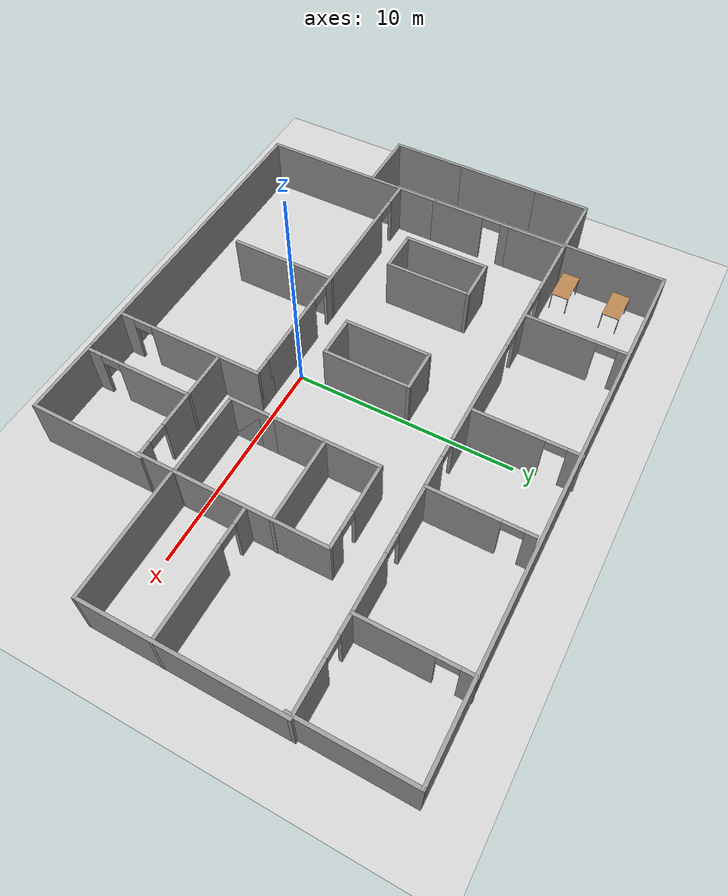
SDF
<sdf version="1.7">
 <world name="default">
  <model name="ground_plane">
   <static>1</static>
   <link name="link">
    <collision name="collision">
     <geometry><plane><normal>0 0 1</normal><size>100 100</size></plane></geometry>
     <surface><friction><ode><mu>100</mu><mu2>50</mu2></ode></friction></surface>
    </collision>
    <visual name="visual">
     <cast_shadows>0</cast_shadows>
     <geometry><plane><normal>0 0 1</normal><size>100 100</size></plane></geometry>
     <material>
      <script><uri>file://media/materials/scripts/gazebo.material</uri><name>Gazebo/Grey</name></script>
     </material>
    </visual>
   </link>
  </model>
  <model name="voenkomat">
   <pose>0.05123 2.49977 0 0 -0 0</pose>
   <link name="Wall_100">
    <collision name="Wall_100_Collision">
     <geometry><box><size>1 0.15 2.5</size></box></geometry>
     <pose>0 0 1.25 0 -0 0</pose>
    </collision>
    <visual name="Wall_100_Visual">
     <pose>0 0 1.25 0 -0 0</pose>
     <geometry><box><size>1 0.15 2.5</size></box></geometry>
     <material>
      <script><uri>file://media/materials/scripts/gazebo.material</uri><name>Gazebo/Grey</name></script>
      <ambient>1 1 1 1</ambient>
     </material>
     <meta><layer>0</layer></meta>
    </visual>
    <pose>1.77334 -3.06579 0 0 -0 0</pose>
   </link>
   <link name="Wall_103">
    <collision name="Wall_103_Collision">
     <geometry><box><size>2 0.15 2.5</size></box></geometry>
     <pose>0 0 1.25 0 -0 0</pose>
    </collision>
    <visual name="Wall_103_Visual">
     <pose>0 0 1.25 0 -0 0</pose>
     <geometry><box><size>2 0.15 2.5</size></box></geometry>
     <material>
      <script><uri>file://media/materials/scripts/gazebo.material</uri><name>Gazebo/Grey</name></script>
      <ambient>1 1 1 1</ambient>
     </material>
     <meta><layer>0</layer></meta>
    </visual>
    <pose>2.19834 -3.99079 0 0 -0 -1.5708</pose>
   </link>
   <link name="Wall_104">
    <pose>4.87334 -4.91579 0 0 -0 0</pose>
    <visual name="Wall_104_Visual_0">
     <pose>-0.778163 0 1.25 0 -0 0</pose>
     <geometry><box><size>3.94367 0.15 2.5</size></box></geometry>
     <material>
      <script><uri>file://media/materials/scripts/gazebo.material</uri><name>Gazebo/Grey</name></script>
      <ambient>1 1 1 1</ambient>
     </material>
     <meta><layer>0</layer></meta>
    </visual>
    <collision name="Wall_104_Collision_0">
     <geometry><box><size>3.94367 0.15 2.5</size></box></geometry>
     <pose>-0.778163 0 1.25 0 -0 0</pose>
    </collision>
    <visual name="Wall_104_Visual_1">
     <pose>2.42184 0 1.25 0 -0 0</pose>
     <geometry><box><size>0.656325 0.15 2.5</size></box></geometry>
     <material>
      <script><uri>file://media/materials/scripts/gazebo.material</uri><name>Gazebo/Grey</name></script>
      <ambient>1 1 1 1</ambient>
     </material>
     <meta><layer>0</layer></meta>
    </visual>
    <collision name="Wall_104_Collision_1">
     <geometry><box><size>0.656325 0.15 2.5</size></box></geometry>
     <pose>2.42184 0 1.25 0 -0 0</pose>
    </collision>
    <visual name="Wall_104_Visual_2">
     <pose>1.64367 0 2.25 0 -0 0</pose>
     <geometry><box><size>0.9 0.15 0.5</size></box></geometry>
     <material>
      <script><uri>file://media/materials/scripts/gazebo.material</uri><name>Gazebo/Grey</name></script>
      <ambient>1 1 1 1</ambient>
     </material>
     <meta><layer>0</layer></meta>
    </visual>
    <collision name="Wall_104_Collision_2">
     <geometry><box><size>0.9 0.15 0.5</size></box></geometry>
     <pose>1.64367 0 2.25 0 -0 0</pose>
    </collision>
   </link>
   <link name="Wall_106">
    <collision name="Wall_106_Collision">
     <geometry><box><size>8.5 0.15 2.5</size></box></geometry>
     <pose>0 0 1.25 0 -0 0</pose>
    </collision>
    <visual name="Wall_106_Visual">
     <pose>0 0 1.25 0 -0 0</pose>
     <geometry><box><size>8.5 0.15 2.5</size></box></geometry>
     <material>
      <script><uri>file://media/materials/scripts/gazebo.material</uri><name>Gazebo/Grey</name></script>
      <ambient>1 1 1 1</ambient>
     </material>
     <meta><layer>0</layer></meta>
    </visual>
    <pose>7.59834 -0.790787 0 0 -0 -1.5708</pose>
   </link>
   <link name="Wall_116">
    <collision name="Wall_116_Collision">
     <geometry><box><size>3.75 0.15 2.5</size></box></geometry>
     <pose>0 0 1.25 0 -0 0</pose>
    </collision>
    <visual name="Wall_116_Visual">
     <pose>0 0 1.25 0 -0 0</pose>
     <geometry><box><size>3.75 0.15 2.5</size></box></geometry>
     <material>
      <script><uri>file://media/materials/scripts/gazebo.material</uri><name>Gazebo/Grey</name></script>
      <ambient>1 1 1 1</ambient>
     </material>
     <meta><layer>0</layer></meta>
    </visual>
    <pose>5.89834 -9.91579 0 0 -0 0</pose>
   </link>
   <link name="Wall_117">
    <collision name="Wall_117_Collision">
     <geometry><box><size>5.25 0.15 2.5</size></box></geometry>
     <pose>0 0 1.25 0 -0 0</pose>
    </collision>
    <visual name="Wall_117_Visual">
     <pose>0 0 1.25 0 -0 0</pose>
     <geometry><box><size>5.25 0.15 2.5</size></box></geometry>
     <material>
      <script><uri>file://media/materials/scripts/gazebo.material</uri><name>Gazebo/Grey</name></script>
      <ambient>1 1 1 1</ambient>
     </material>
     <meta><layer>0</layer></meta>
    </visual>
    <pose>7.69834 -7.36579 0 0 -0 1.5708</pose>
   </link>
   <link name="Wall_119">
    <collision name="Wall_119_Collision">
     <geometry><box><size>5 0.15 2.5</size></box></geometry>
     <pose>0 0 1.25 0 -0 0</pose>
    </collision>
    <visual name="Wall_119_Visual">
     <pose>0 0 1.25 0 -0 0</pose>
     <geometry><box><size>5 0.15 2.5</size></box></geometry>
     <material>
      <script><uri>file://media/materials/scripts/gazebo.material</uri><name>Gazebo/Grey</name></script>
      <ambient>1 1 1 1</ambient>
     </material>
     <meta><layer>0</layer></meta>
    </visual>
    <pose>-3.78453 -5.48183 0 0 -0 -1.5708</pose>
   </link>
   <link name="Wall_121">
    <pose>2.19834 -7.34079 0 0 -0 -1.5708</pose>
    <visual name="Wall_121_Visual_0">
     <pose>-0.772605 0 1.25 0 -0 0</pose>
     <geometry><box><size>3.45479 0.15 2.5</size></box></geometry>
     <material>
      <script><uri>file://media/materials/scripts/gazebo.material</uri><name>Gazebo/Grey</name></script>
      <ambient>1 1 1 1</ambient>
     </material>
     <meta><layer>0</layer></meta>
    </visual>
    <collision name="Wall_121_Collision_0">
     <geometry><box><size>3.45479 0.15 2.5</size></box></geometry>
     <pose>-0.772605 0 1.25 0 -0 0</pose>
    </collision>
    <visual name="Wall_121_Visual_1">
     <pose>2.1774 0 1.25 0 -0 0</pose>
     <geometry><box><size>0.645211 0.15 2.5</size></box></geometry>
     <material>
      <script><uri>file://media/materials/scripts/gazebo.material</uri><name>Gazebo/Grey</name></script>
      <ambient>1 1 1 1</ambient>
     </material>
     <meta><layer>0</layer></meta>
    </visual>
    <collision name="Wall_121_Collision_1">
     <geometry><box><size>0.645211 0.15 2.5</size></box></geometry>
     <pose>2.1774 0 1.25 0 -0 0</pose>
    </collision>
    <visual name="Wall_121_Visual_2">
     <pose>1.40479 0 2.25 0 -0 0</pose>
     <geometry><box><size>0.9 0.15 0.5</size></box></geometry>
     <material>
      <script><uri>file://media/materials/scripts/gazebo.material</uri><name>Gazebo/Grey</name></script>
      <ambient>1 1 1 1</ambient>
     </material>
     <meta><layer>0</layer></meta>
    </visual>
    <collision name="Wall_121_Collision_2">
     <geometry><box><size>0.9 0.15 0.5</size></box></geometry>
     <pose>1.40479 0 2.25 0 -0 0</pose>
    </collision>
   </link>
   <link name="Wall_126">
    <collision name="Wall_126_Collision">
     <geometry><box><size>8.75 0.15 2.5</size></box></geometry>
     <pose>0 0 1.25 0 -0 0</pose>
    </collision>
    <visual name="Wall_126_Visual">
     <pose>0 0 1.25 0 -0 0</pose>
     <geometry><box><size>8.75 0.15 2.5</size></box></geometry>
     <material>
      <script><uri>file://media/materials/scripts/gazebo.material</uri><name>Gazebo/Grey</name></script>
      <ambient>1 1 1 1</ambient>
     </material>
     <meta><layer>0</layer></meta>
    </visual>
    <pose>13.3483 0.934213 0 0 -0 -1.5708</pose>
   </link>
   <link name="Wall_127">
    <collision name="Wall_127_Collision">
     <geometry><box><size>5.75 0.15 2.5</size></box></geometry>
     <pose>0 0 1.25 0 -0 0</pose>
    </collision>
    <visual name="Wall_127_Visual">
     <pose>0 0 1.25 0 -0 0</pose>
     <geometry><box><size>5.75 0.15 2.5</size></box></geometry>
     <material>
      <script><uri>file://media/materials/scripts/gazebo.material</uri><name>Gazebo/Grey</name></script>
      <ambient>1 1 1 1</ambient>
     </material>
     <meta><layer>0</layer></meta>
    </visual>
    <pose>10.5483 -3.36579 0 0 -0 3.14159</pose>
   </link>
   <link name="Wall_129">
    <pose>10.5517 -0.118334 0 0 -0 3.14159</pose>
    <visual name="Wall_129_Visual_0">
     <pose>-0.809428 0 1.25 0 -0 0</pose>
     <geometry><box><size>4.13114 0.15 2.5</size></box></geometry>
     <material>
      <script><uri>file://media/materials/scripts/gazebo.material</uri><name>Gazebo/Grey</name></script>
      <ambient>1 1 1 1</ambient>
     </material>
     <meta><layer>0</layer></meta>
    </visual>
    <collision name="Wall_129_Collision_0">
     <geometry><box><size>4.13114 0.15 2.5</size></box></geometry>
     <pose>-0.809428 0 1.25 0 -0 0</pose>
    </collision>
    <visual name="Wall_129_Visual_1">
     <pose>2.51557 0 1.25 0 -0 0</pose>
     <geometry><box><size>0.718856 0.15 2.5</size></box></geometry>
     <material>
      <script><uri>file://media/materials/scripts/gazebo.material</uri><name>Gazebo/Grey</name></script>
      <ambient>1 1 1 1</ambient>
     </material>
     <meta><layer>0</layer></meta>
    </visual>
    <collision name="Wall_129_Collision_1">
     <geometry><box><size>0.718856 0.15 2.5</size></box></geometry>
     <pose>2.51557 0 1.25 0 -0 0</pose>
    </collision>
    <visual name="Wall_129_Visual_2">
     <pose>1.70614 0 2.25 0 -0 0</pose>
     <geometry><box><size>0.9 0.15 0.5</size></box></geometry>
     <material>
      <script><uri>file://media/materials/scripts/gazebo.material</uri><name>Gazebo/Grey</name></script>
      <ambient>1 1 1 1</ambient>
     </material>
     <meta><layer>0</layer></meta>
    </visual>
    <collision name="Wall_129_Collision_2">
     <geometry><box><size>0.9 0.15 0.5</size></box></geometry>
     <pose>1.70614 0 2.25 0 -0 0</pose>
    </collision>
   </link>
   <link name="Wall_131">
    <pose>4.41332 -7.33089 0 0 -0 -1.5708</pose>
    <visual name="Wall_131_Visual_0">
     <pose>-0.76586 0 1.25 0 -0 0</pose>
     <geometry><box><size>3.46828 0.15 2.5</size></box></geometry>
     <material>
      <script><uri>file://media/materials/scripts/gazebo.material</uri><name>Gazebo/Grey</name></script>
      <ambient>1 1 1 1</ambient>
     </material>
     <meta><layer>0</layer></meta>
    </visual>
    <collision name="Wall_131_Collision_0">
     <geometry><box><size>3.46828 0.15 2.5</size></box></geometry>
     <pose>-0.76586 0 1.25 0 -0 0</pose>
    </collision>
    <visual name="Wall_131_Visual_1">
     <pose>2.18414 0 1.25 0 -0 0</pose>
     <geometry><box><size>0.63172 0.15 2.5</size></box></geometry>
     <material>
      <script><uri>file://media/materials/scripts/gazebo.material</uri><name>Gazebo/Grey</name></script>
      <ambient>1 1 1 1</ambient>
     </material>
     <meta><layer>0</layer></meta>
    </visual>
    <collision name="Wall_131_Collision_1">
     <geometry><box><size>0.63172 0.15 2.5</size></box></geometry>
     <pose>2.18414 0 1.25 0 -0 0</pose>
    </collision>
    <visual name="Wall_131_Visual_2">
     <pose>1.41828 0 2.25 0 -0 0</pose>
     <geometry><box><size>0.9 0.15 0.5</size></box></geometry>
     <material>
      <script><uri>file://media/materials/scripts/gazebo.material</uri><name>Gazebo/Grey</name></script>
      <ambient>1 1 1 1</ambient>
     </material>
     <meta><layer>0</layer></meta>
    </visual>
    <collision name="Wall_131_Collision_2">
     <geometry><box><size>0.9 0.15 0.5</size></box></geometry>
     <pose>1.41828 0 2.25 0 -0 0</pose>
    </collision>
   </link>
   <link name="Wall_133">
    <collision name="Wall_133_Collision">
     <geometry><box><size>4 0.15 2.5</size></box></geometry>
     <pose>0 0 1.25 0 -0 0</pose>
    </collision>
    <visual name="Wall_133_Visual">
     <pose>0 0 1.25 0 -0 0</pose>
     <geometry><box><size>4 0.15 2.5</size></box></geometry>
     <material>
      <script><uri>file://media/materials/scripts/gazebo.material</uri><name>Gazebo/Grey</name></script>
      <ambient>1 1 1 1</ambient>
     </material>
     <meta><layer>0</layer></meta>
    </visual>
    <pose>5.69103 1.00063 0 0 -0 0</pose>
   </link>
   <link name="Wall_152">
    <pose>3.71917 7.45539 0 0 -0 1.5708</pose>
    <visual name="Wall_152_Visual_0">
     <pose>-0.692996 0 1.25 0 -0 0</pose>
     <geometry><box><size>3.11401 0.15 2.5</size></box></geometry>
     <material>
      <script><uri>file://media/materials/scripts/gazebo.material</uri><name>Gazebo/Grey</name></script>
      <ambient>1 1 1 1</ambient>
     </material>
     <meta><layer>0</layer></meta>
    </visual>
    <collision name="Wall_152_Collision_0">
     <geometry><box><size>3.11401 0.15 2.5</size></box></geometry>
     <pose>-0.692996 0 1.25 0 -0 0</pose>
    </collision>
    <visual name="Wall_152_Visual_1">
     <pose>2.007 0 1.25 0 -0 0</pose>
     <geometry><box><size>0.485991 0.15 2.5</size></box></geometry>
     <material>
      <script><uri>file://media/materials/scripts/gazebo.material</uri><name>Gazebo/Grey</name></script>
      <ambient>1 1 1 1</ambient>
     </material>
     <meta><layer>0</layer></meta>
    </visual>
    <collision name="Wall_152_Collision_1">
     <geometry><box><size>0.485991 0.15 2.5</size></box></geometry>
     <pose>2.007 0 1.25 0 -0 0</pose>
    </collision>
    <visual name="Wall_152_Visual_2">
     <pose>1.31401 0 2.25 0 -0 0</pose>
     <geometry><box><size>0.9 0.15 0.5</size></box></geometry>
     <material>
      <script><uri>file://media/materials/scripts/gazebo.material</uri><name>Gazebo/Grey</name></script>
      <ambient>1 1 1 1</ambient>
     </material>
     <meta><layer>0</layer></meta>
    </visual>
    <collision name="Wall_152_Collision_2">
     <geometry><box><size>0.9 0.15 0.5</size></box></geometry>
     <pose>1.31401 0 2.25 0 -0 0</pose>
    </collision>
   </link>
   <link name="Wall_156">
    <pose>9.33374 7.58039 0 0 -0 1.5708</pose>
    <visual name="Wall_156_Visual_0">
     <pose>-0.77731 0 1.25 0 -0 0</pose>
     <geometry><box><size>3.19538 0.15 2.5</size></box></geometry>
     <material>
      <script><uri>file://media/materials/scripts/gazebo.material</uri><name>Gazebo/Grey</name></script>
      <ambient>1 1 1 1</ambient>
     </material>
     <meta><layer>0</layer></meta>
    </visual>
    <collision name="Wall_156_Collision_0">
     <geometry><box><size>3.19538 0.15 2.5</size></box></geometry>
     <pose>-0.77731 0 1.25 0 -0 0</pose>
    </collision>
    <visual name="Wall_156_Visual_1">
     <pose>2.04769 0 1.25 0 -0 0</pose>
     <geometry><box><size>0.654621 0.15 2.5</size></box></geometry>
     <material>
      <script><uri>file://media/materials/scripts/gazebo.material</uri><name>Gazebo/Grey</name></script>
      <ambient>1 1 1 1</ambient>
     </material>
     <meta><layer>0</layer></meta>
    </visual>
    <collision name="Wall_156_Collision_1">
     <geometry><box><size>0.654621 0.15 2.5</size></box></geometry>
     <pose>2.04769 0 1.25 0 -0 0</pose>
    </collision>
    <visual name="Wall_156_Visual_2">
     <pose>1.27038 0 2.25 0 -0 0</pose>
     <geometry><box><size>0.9 0.15 0.5</size></box></geometry>
     <material>
      <script><uri>file://media/materials/scripts/gazebo.material</uri><name>Gazebo/Grey</name></script>
      <ambient>1 1 1 1</ambient>
     </material>
     <meta><layer>0</layer></meta>
    </visual>
    <collision name="Wall_156_Collision_2">
     <geometry><box><size>0.9 0.15 0.5</size></box></geometry>
     <pose>1.27038 0 2.25 0 -0 0</pose>
    </collision>
   </link>
   <link name="Wall_159">
    <collision name="Wall_159_Collision">
     <geometry><box><size>3.5 0.15 2.5</size></box></geometry>
     <pose>0 0 1.25 0 -0 0</pose>
    </collision>
    <visual name="Wall_159_Visual">
     <pose>0 0 1.25 0 -0 0</pose>
     <geometry><box><size>3.5 0.15 2.5</size></box></geometry>
     <material>
      <script><uri>file://media/materials/scripts/gazebo.material</uri><name>Gazebo/Grey</name></script>
      <ambient>1 1 1 1</ambient>
     </material>
     <meta><layer>0</layer></meta>
    </visual>
    <pose>-13.3517 -2.89079 0 0 -0 -1.5708</pose>
   </link>
   <link name="Wall_162">
    <collision name="Wall_162_Collision">
     <geometry><box><size>3 0.15 2.5</size></box></geometry>
     <pose>0 0 1.25 0 -0 0</pose>
    </collision>
    <visual name="Wall_162_Visual">
     <pose>0 0 1.25 0 -0 0</pose>
     <geometry><box><size>3 0.15 2.5</size></box></geometry>
     <material>
      <script><uri>file://media/materials/scripts/gazebo.material</uri><name>Gazebo/Grey</name></script>
      <ambient>1 1 1 1</ambient>
     </material>
     <meta><layer>0</layer></meta>
    </visual>
    <pose>-11.9267 -4.56579 0 0 -0 0</pose>
   </link>
   <link name="Wall_165">
    <collision name="Wall_165_Collision">
     <geometry><box><size>24 0.15 2.5</size></box></geometry>
     <pose>0 0 1.25 0 -0 0</pose>
    </collision>
    <visual name="Wall_165_Visual">
     <pose>0 0 1.25 0 -0 0</pose>
     <geometry><box><size>24 0.15 2.5</size></box></geometry>
     <material>
      <script><uri>file://media/materials/scripts/gazebo.material</uri><name>Gazebo/Grey</name></script>
      <ambient>1 1 1 1</ambient>
     </material>
     <meta><layer>0</layer></meta>
    </visual>
    <pose>1.31046 9.85172 0 0 -0 0</pose>
   </link>
   <link name="Wall_169">
    <collision name="Wall_169_Collision">
     <geometry><box><size>4.75 0.15 2.5</size></box></geometry>
     <pose>0 0 1.25 0 -0 0</pose>
    </collision>
    <visual name="Wall_169_Visual">
     <pose>0 0 1.25 0 -0 0</pose>
     <geometry><box><size>4.75 0.15 2.5</size></box></geometry>
     <material>
      <script><uri>file://media/materials/scripts/gazebo.material</uri><name>Gazebo/Grey</name></script>
      <ambient>1 1 1 1</ambient>
     </material>
     <meta><layer>0</layer></meta>
    </visual>
    <pose>-10.6145 7.55172 0 0 -0 -1.5708</pose>
   </link>
   <link name="Wall_171">
    <collision name="Wall_171_Collision">
     <geometry><box><size>5 0.15 2.5</size></box></geometry>
     <pose>0 0 1.25 0 -0 0</pose>
    </collision>
    <visual name="Wall_171_Visual">
     <pose>0 0 1.25 0 -0 0</pose>
     <geometry><box><size>5 0.15 2.5</size></box></geometry>
     <material>
      <script><uri>file://media/materials/scripts/gazebo.material</uri><name>Gazebo/Grey</name></script>
      <ambient>1 1 1 1</ambient>
     </material>
     <meta><layer>0</layer></meta>
    </visual>
    <pose>13.2355 7.42672 0 0 -0 -1.5708</pose>
   </link>
   <link name="Wall_176">
    <pose>-5.85231 7.55196 0 0 -0 -1.5708</pose>
    <visual name="Wall_176_Visual_0">
     <pose>-2.10259 0 1.25 0 -0 0</pose>
     <geometry><box><size>0.544819 0.15 2.5</size></box></geometry>
     <material>
      <script><uri>file://media/materials/scripts/gazebo.material</uri><name>Gazebo/Grey</name></script>
      <ambient>1 1 1 1</ambient>
     </material>
     <meta><layer>0</layer></meta>
    </visual>
    <collision name="Wall_176_Collision_0">
     <geometry><box><size>0.544819 0.15 2.5</size></box></geometry>
     <pose>-2.10259 0 1.25 0 -0 0</pose>
    </collision>
    <visual name="Wall_176_Visual_1">
     <pose>0.722409 0 1.25 0 -0 0</pose>
     <geometry><box><size>3.30518 0.15 2.5</size></box></geometry>
     <material>
      <script><uri>file://media/materials/scripts/gazebo.material</uri><name>Gazebo/Grey</name></script>
      <ambient>1 1 1 1</ambient>
     </material>
     <meta><layer>0</layer></meta>
    </visual>
    <collision name="Wall_176_Collision_1">
     <geometry><box><size>3.30518 0.15 2.5</size></box></geometry>
     <pose>0.722409 0 1.25 0 -0 0</pose>
    </collision>
    <visual name="Wall_176_Visual_2">
     <pose>-1.38018 0 2.25 0 -0 0</pose>
     <geometry><box><size>0.9 0.15 0.5</size></box></geometry>
     <material>
      <script><uri>file://media/materials/scripts/gazebo.material</uri><name>Gazebo/Grey</name></script>
      <ambient>1 1 1 1</ambient>
     </material>
     <meta><layer>0</layer></meta>
    </visual>
    <collision name="Wall_176_Collision_2">
     <geometry><box><size>0.9 0.15 0.5</size></box></geometry>
     <pose>-1.38018 0 2.25 0 -0 0</pose>
    </collision>
   </link>
   <link name="Wall_181">
    <pose>-0.289859 7.61579 0 0 -0 -1.5708</pose>
    <visual name="Wall_181_Visual_0">
     <pose>-2.02999 0 1.25 0 -0 0</pose>
     <geometry><box><size>0.690014 0.15 2.5</size></box></geometry>
     <material>
      <script><uri>file://media/materials/scripts/gazebo.material</uri><name>Gazebo/Grey</name></script>
      <ambient>1 1 1 1</ambient>
     </material>
     <meta><layer>0</layer></meta>
    </visual>
    <collision name="Wall_181_Collision_0">
     <geometry><box><size>0.690014 0.15 2.5</size></box></geometry>
     <pose>-2.02999 0 1.25 0 -0 0</pose>
    </collision>
    <visual name="Wall_181_Visual_1">
     <pose>0.795007 0 1.25 0 -0 0</pose>
     <geometry><box><size>3.15999 0.15 2.5</size></box></geometry>
     <material>
      <script><uri>file://media/materials/scripts/gazebo.material</uri><name>Gazebo/Grey</name></script>
      <ambient>1 1 1 1</ambient>
     </material>
     <meta><layer>0</layer></meta>
    </visual>
    <collision name="Wall_181_Collision_1">
     <geometry><box><size>3.15999 0.15 2.5</size></box></geometry>
     <pose>0.795007 0 1.25 0 -0 0</pose>
    </collision>
    <visual name="Wall_181_Visual_2">
     <pose>-1.23499 0 2.25 0 -0 0</pose>
     <geometry><box><size>0.9 0.15 0.5</size></box></geometry>
     <material>
      <script><uri>file://media/materials/scripts/gazebo.material</uri><name>Gazebo/Grey</name></script>
      <ambient>1 1 1 1</ambient>
     </material>
     <meta><layer>0</layer></meta>
    </visual>
    <collision name="Wall_181_Collision_2">
     <geometry><box><size>0.9 0.15 0.5</size></box></geometry>
     <pose>-1.23499 0 2.25 0 -0 0</pose>
    </collision>
   </link>
   <link name="Wall_183">
    <collision name="Wall_183_Collision">
     <geometry><box><size>2.75 0.15 2.5</size></box></geometry>
     <pose>0 0 1.25 0 -0 0</pose>
    </collision>
    <visual name="Wall_183_Visual">
     <pose>0 0 1.25 0 -0 0</pose>
     <geometry><box><size>2.75 0.15 2.5</size></box></geometry>
     <material>
      <script><uri>file://media/materials/scripts/gazebo.material</uri><name>Gazebo/Grey</name></script>
      <ambient>1 1 1 1</ambient>
     </material>
     <meta><layer>0</layer></meta>
    </visual>
    <pose>-11.9145 5.25172 0 0 -0 3.14159</pose>
   </link>
   <link name="Wall_185">
    <collision name="Wall_185_Collision">
     <geometry><box><size>2.75 0.15 2.5</size></box></geometry>
     <pose>0 0 1.25 0 -0 0</pose>
    </collision>
    <visual name="Wall_185_Visual">
     <pose>0 0 1.25 0 -0 0</pose>
     <geometry><box><size>2.75 0.15 2.5</size></box></geometry>
     <material>
      <script><uri>file://media/materials/scripts/gazebo.material</uri><name>Gazebo/Grey</name></script>
      <ambient>1 1 1 1</ambient>
     </material>
     <meta><layer>0</layer></meta>
    </visual>
    <pose>-13.3517 3.93421 0 0 -0 1.5708</pose>
   </link>
   <link name="Wall_25">
    <collision name="Wall_25_Collision">
     <geometry><box><size>4 0.15 2.5</size></box></geometry>
     <pose>0 0 1.25 0 -0 0</pose>
    </collision>
    <visual name="Wall_25_Visual">
     <pose>0 0 1.25 0 -0 0</pose>
     <geometry><box><size>4 0.15 2.5</size></box></geometry>
     <material>
      <script><uri>file://media/materials/scripts/gazebo.material</uri><name>Gazebo/Grey</name></script>
      <ambient>1 1 1 1</ambient>
     </material>
     <meta><layer>0</layer></meta>
    </visual>
    <pose>-0.101664 0.709213 0 0 -0 1.5708</pose>
   </link>
   <link name="Wall_26">
    <collision name="Wall_26_Collision">
     <geometry><box><size>2 0.15 2.5</size></box></geometry>
     <pose>0 0 1.25 0 -0 0</pose>
    </collision>
    <visual name="Wall_26_Visual">
     <pose>0 0 1.25 0 -0 0</pose>
     <geometry><box><size>2 0.15 2.5</size></box></geometry>
     <material>
      <script><uri>file://media/materials/scripts/gazebo.material</uri><name>Gazebo/Grey</name></script>
      <ambient>1 1 1 1</ambient>
     </material>
     <meta><layer>0</layer></meta>
    </visual>
    <pose>-1.02666 2.63421 0 0 -0 3.14159</pose>
   </link>
   <link name="Wall_27">
    <collision name="Wall_27_Collision">
     <geometry><box><size>4 0.15 2.5</size></box></geometry>
     <pose>0 0 1.25 0 -0 0</pose>
    </collision>
    <visual name="Wall_27_Visual">
     <pose>0 0 1.25 0 -0 0</pose>
     <geometry><box><size>4 0.15 2.5</size></box></geometry>
     <material>
      <script><uri>file://media/materials/scripts/gazebo.material</uri><name>Gazebo/Grey</name></script>
      <ambient>1 1 1 1</ambient>
     </material>
     <meta><layer>0</layer></meta>
    </visual>
    <pose>-1.95166 0.709213 0 0 -0 -1.5708</pose>
   </link>
   <link name="Wall_28">
    <collision name="Wall_28_Collision">
     <geometry><box><size>2 0.15 2.5</size></box></geometry>
     <pose>0 0 1.25 0 -0 0</pose>
    </collision>
    <visual name="Wall_28_Visual">
     <pose>0 0 1.25 0 -0 0</pose>
     <geometry><box><size>2 0.15 2.5</size></box></geometry>
     <material>
      <script><uri>file://media/materials/scripts/gazebo.material</uri><name>Gazebo/Grey</name></script>
      <ambient>1 1 1 1</ambient>
     </material>
     <meta><layer>0</layer></meta>
    </visual>
    <pose>-1.02666 -1.21579 0 0 -0 0</pose>
   </link>
   <link name="Wall_31">
    <collision name="Wall_31_Collision">
     <geometry><box><size>4 0.15 2.5</size></box></geometry>
     <pose>0 0 1.25 0 -0 0</pose>
    </collision>
    <visual name="Wall_31_Visual">
     <pose>0 0 1.25 0 -0 0</pose>
     <geometry><box><size>4 0.15 2.5</size></box></geometry>
     <material>
      <script><uri>file://media/materials/scripts/gazebo.material</uri><name>Gazebo/Grey</name></script>
      <ambient>1 1 1 1</ambient>
     </material>
     <meta><layer>0</layer></meta>
    </visual>
    <pose>-5.80166 0.709213 0 0 -0 1.5708</pose>
   </link>
   <link name="Wall_36">
    <collision name="Wall_36_Collision">
     <geometry><box><size>2 0.15 2.5</size></box></geometry>
     <pose>0 0 1.25 0 -0 0</pose>
    </collision>
    <visual name="Wall_36_Visual">
     <pose>0 0 1.25 0 -0 0</pose>
     <geometry><box><size>2 0.15 2.5</size></box></geometry>
     <material>
      <script><uri>file://media/materials/scripts/gazebo.material</uri><name>Gazebo/Grey</name></script>
      <ambient>1 1 1 1</ambient>
     </material>
     <meta><layer>0</layer></meta>
    </visual>
    <pose>-6.72666 2.63421 0 0 -0 3.14159</pose>
   </link>
   <link name="Wall_37">
    <collision name="Wall_37_Collision">
     <geometry><box><size>4 0.15 2.5</size></box></geometry>
     <pose>0 0 1.25 0 -0 0</pose>
    </collision>
    <visual name="Wall_37_Visual">
     <pose>0 0 1.25 0 -0 0</pose>
     <geometry><box><size>4 0.15 2.5</size></box></geometry>
     <material>
      <script><uri>file://media/materials/scripts/gazebo.material</uri><name>Gazebo/Grey</name></script>
      <ambient>1 1 1 1</ambient>
     </material>
     <meta><layer>0</layer></meta>
    </visual>
    <pose>-7.65166 0.709213 0 0 -0 -1.5708</pose>
   </link>
   <link name="Wall_38">
    <collision name="Wall_38_Collision">
     <geometry><box><size>2 0.15 2.5</size></box></geometry>
     <pose>0 0 1.25 0 -0 0</pose>
    </collision>
    <visual name="Wall_38_Visual">
     <pose>0 0 1.25 0 -0 0</pose>
     <geometry><box><size>2 0.15 2.5</size></box></geometry>
     <material>
      <script><uri>file://media/materials/scripts/gazebo.material</uri><name>Gazebo/Grey</name></script>
      <ambient>1 1 1 1</ambient>
     </material>
     <meta><layer>0</layer></meta>
    </visual>
    <pose>-6.72666 -1.21579 0 0 -0 0</pose>
   </link>
   <link name="Wall_41">
    <pose>-10.5017 0.709213 0 0 -0 1.5708</pose>
    <visual name="Wall_41_Visual_0">
     <pose>-0.729563 0 1.25 0 -0 0</pose>
     <geometry><box><size>2.54087 0.15 2.5</size></box></geometry>
     <material>
      <script><uri>file://media/materials/scripts/gazebo.material</uri><name>Gazebo/Grey</name></script>
      <ambient>1 1 1 1</ambient>
     </material>
     <meta><layer>0</layer></meta>
    </visual>
    <collision name="Wall_41_Collision_0">
     <geometry><box><size>2.54087 0.15 2.5</size></box></geometry>
     <pose>-0.729563 0 1.25 0 -0 0</pose>
    </collision>
    <visual name="Wall_41_Visual_1">
     <pose>1.72044 0 1.25 0 -0 0</pose>
     <geometry><box><size>0.559126 0.15 2.5</size></box></geometry>
     <material>
      <script><uri>file://media/materials/scripts/gazebo.material</uri><name>Gazebo/Grey</name></script>
      <ambient>1 1 1 1</ambient>
     </material>
     <meta><layer>0</layer></meta>
    </visual>
    <collision name="Wall_41_Collision_1">
     <geometry><box><size>0.559126 0.15 2.5</size></box></geometry>
     <pose>1.72044 0 1.25 0 -0 0</pose>
    </collision>
    <visual name="Wall_41_Visual_2">
     <pose>0.990874 0 2.25 0 -0 0</pose>
     <geometry><box><size>0.9 0.15 0.5</size></box></geometry>
     <material>
      <script><uri>file://media/materials/scripts/gazebo.material</uri><name>Gazebo/Grey</name></script>
      <ambient>1 1 1 1</ambient>
     </material>
     <meta><layer>0</layer></meta>
    </visual>
    <collision name="Wall_41_Collision_2">
     <geometry><box><size>0.9 0.15 0.5</size></box></geometry>
     <pose>0.990874 0 2.25 0 -0 0</pose>
    </collision>
   </link>
   <link name="Wall_49">
    <collision name="Wall_49_Collision">
     <geometry><box><size>4 0.15 2.5</size></box></geometry>
     <pose>0 0 1.25 0 -0 0</pose>
    </collision>
    <visual name="Wall_49_Visual">
     <pose>0 0 1.25 0 -0 0</pose>
     <geometry><box><size>4 0.15 2.5</size></box></geometry>
     <material>
      <script><uri>file://media/materials/scripts/gazebo.material</uri><name>Gazebo/Grey</name></script>
      <ambient>1 1 1 1</ambient>
     </material>
     <meta><layer>0</layer></meta>
    </visual>
    <pose>-13.3517 0.709213 0 0 -0 -1.5708</pose>
   </link>
   <link name="Wall_52">
    <collision name="Wall_52_Collision">
     <geometry><box><size>2 0.15 2.5</size></box></geometry>
     <pose>0 0 1.25 0 -0 0</pose>
    </collision>
    <visual name="Wall_52_Visual">
     <pose>0 0 1.25 0 -0 0</pose>
     <geometry><box><size>2 0.15 2.5</size></box></geometry>
     <material>
      <script><uri>file://media/materials/scripts/gazebo.material</uri><name>Gazebo/Grey</name></script>
      <ambient>1 1 1 1</ambient>
     </material>
     <meta><layer>0</layer></meta>
    </visual>
    <pose>-10.5017 -2.14079 0 0 -0 -1.5708</pose>
   </link>
   <link name="Wall_53">
    <pose>-4.57666 -3.06579 0 0 -0 0</pose>
    <visual name="Wall_53_Visual_0">
     <pose>-5.42324 0 1.25 0 -0 0</pose>
     <geometry><box><size>1.15352 0.15 2.5</size></box></geometry>
     <material>
      <script><uri>file://media/materials/scripts/gazebo.material</uri><name>Gazebo/Grey</name></script>
      <ambient>1 1 1 1</ambient>
     </material>
     <meta><layer>0</layer></meta>
    </visual>
    <collision name="Wall_53_Collision_0">
     <geometry><box><size>1.15352 0.15 2.5</size></box></geometry>
     <pose>-5.42324 0 1.25 0 -0 0</pose>
    </collision>
    <visual name="Wall_53_Visual_1">
     <pose>-1.3038 0 1.25 0 -0 0</pose>
     <geometry><box><size>5.28537 0.15 2.5</size></box></geometry>
     <material>
      <script><uri>file://media/materials/scripts/gazebo.material</uri><name>Gazebo/Grey</name></script>
      <ambient>1 1 1 1</ambient>
     </material>
     <meta><layer>0</layer></meta>
    </visual>
    <collision name="Wall_53_Collision_1">
     <geometry><box><size>5.28537 0.15 2.5</size></box></geometry>
     <pose>-1.3038 0 1.25 0 -0 0</pose>
    </collision>
    <visual name="Wall_53_Visual_2">
     <pose>4.11945 0 1.25 0 -0 0</pose>
     <geometry><box><size>3.76111 0.15 2.5</size></box></geometry>
     <material>
      <script><uri>file://media/materials/scripts/gazebo.material</uri><name>Gazebo/Grey</name></script>
      <ambient>1 1 1 1</ambient>
     </material>
     <meta><layer>0</layer></meta>
    </visual>
    <collision name="Wall_53_Collision_2">
     <geometry><box><size>3.76111 0.15 2.5</size></box></geometry>
     <pose>4.11945 0 1.25 0 -0 0</pose>
    </collision>
    <visual name="Wall_53_Visual_3">
     <pose>-4.39648 0 2.25 0 -0 0</pose>
     <geometry><box><size>0.9 0.15 0.5</size></box></geometry>
     <material>
      <script><uri>file://media/materials/scripts/gazebo.material</uri><name>Gazebo/Grey</name></script>
      <ambient>1 1 1 1</ambient>
     </material>
     <meta><layer>0</layer></meta>
    </visual>
    <collision name="Wall_53_Collision_3">
     <geometry><box><size>0.9 0.15 0.5</size></box></geometry>
     <pose>-4.39648 0 2.25 0 -0 0</pose>
    </collision>
    <visual name="Wall_53_Visual_4">
     <pose>1.78889 0 2.25 0 -0 0</pose>
     <geometry><box><size>0.9 0.15 0.5</size></box></geometry>
     <material>
      <script><uri>file://media/materials/scripts/gazebo.material</uri><name>Gazebo/Grey</name></script>
      <ambient>1 1 1 1</ambient>
     </material>
     <meta><layer>0</layer></meta>
    </visual>
    <collision name="Wall_53_Collision_4">
     <geometry><box><size>0.9 0.15 0.5</size></box></geometry>
     <pose>1.78889 0 2.25 0 -0 0</pose>
    </collision>
   </link>
   <link name="Wall_56">
    <collision name="Wall_56_Collision">
     <geometry><box><size>4.75 0.15 2.5</size></box></geometry>
     <pose>0 0 1.25 0 -0 0</pose>
    </collision>
    <visual name="Wall_56_Visual">
     <pose>0 0 1.25 0 -0 0</pose>
     <geometry><box><size>4.75 0.15 2.5</size></box></geometry>
     <material>
      <script><uri>file://media/materials/scripts/gazebo.material</uri><name>Gazebo/Grey</name></script>
      <ambient>1 1 1 1</ambient>
     </material>
     <meta><layer>0</layer></meta>
    </visual>
    <pose>3.74834 1.08421 0 0 -0 1.5708</pose>
   </link>
   <link name="Wall_57">
    <pose>5.67334 3.38421 0 0 -0 0</pose>
    <visual name="Wall_57_Visual_0">
     <pose>-0.884074 0 1.25 0 -0 0</pose>
     <geometry><box><size>2.23185 0.15 2.5</size></box></geometry>
     <material>
      <script><uri>file://media/materials/scripts/gazebo.material</uri><name>Gazebo/Grey</name></script>
      <ambient>1 1 1 1</ambient>
     </material>
     <meta><layer>0</layer></meta>
    </visual>
    <collision name="Wall_57_Collision_0">
     <geometry><box><size>2.23185 0.15 2.5</size></box></geometry>
     <pose>-0.884074 0 1.25 0 -0 0</pose>
    </collision>
    <visual name="Wall_57_Visual_1">
     <pose>1.56593 0 1.25 0 -0 0</pose>
     <geometry><box><size>0.868148 0.15 2.5</size></box></geometry>
     <material>
      <script><uri>file://media/materials/scripts/gazebo.material</uri><name>Gazebo/Grey</name></script>
      <ambient>1 1 1 1</ambient>
     </material>
     <meta><layer>0</layer></meta>
    </visual>
    <collision name="Wall_57_Collision_1">
     <geometry><box><size>0.868148 0.15 2.5</size></box></geometry>
     <pose>1.56593 0 1.25 0 -0 0</pose>
    </collision>
    <visual name="Wall_57_Visual_2">
     <pose>0.681852 0 2.25 0 -0 0</pose>
     <geometry><box><size>0.9 0.15 0.5</size></box></geometry>
     <material>
      <script><uri>file://media/materials/scripts/gazebo.material</uri><name>Gazebo/Grey</name></script>
      <ambient>1 1 1 1</ambient>
     </material>
     <meta><layer>0</layer></meta>
    </visual>
    <collision name="Wall_57_Collision_2">
     <geometry><box><size>0.9 0.15 0.5</size></box></geometry>
     <pose>0.681852 0 2.25 0 -0 0</pose>
    </collision>
   </link>
   <link name="Wall_60">
    <collision name="Wall_60_Collision">
     <geometry><box><size>7 0.15 2.5</size></box></geometry>
     <pose>0 0 1.25 0 -0 0</pose>
    </collision>
    <visual name="Wall_60_Visual">
     <pose>0 0 1.25 0 -0 0</pose>
     <geometry><box><size>7 0.15 2.5</size></box></geometry>
     <material>
      <script><uri>file://media/materials/scripts/gazebo.material</uri><name>Gazebo/Grey</name></script>
      <ambient>1 1 1 1</ambient>
     </material>
     <meta><layer>0</layer></meta>
    </visual>
    <pose>-10.5017 -6.49079 0 0 -0 -1.5708</pose>
   </link>
   <link name="Wall_61">
    <collision name="Wall_61_Collision">
     <geometry><box><size>14.75 0.15 2.5</size></box></geometry>
     <pose>0 0 1.25 0 -0 0</pose>
    </collision>
    <visual name="Wall_61_Visual">
     <pose>0 0 1.25 0 -0 0</pose>
     <geometry><box><size>14.75 0.15 2.5</size></box></geometry>
     <material>
      <script><uri>file://media/materials/scripts/gazebo.material</uri><name>Gazebo/Grey</name></script>
      <ambient>1 1 1 1</ambient>
     </material>
     <meta><layer>0</layer></meta>
    </visual>
    <pose>-3.20166 -9.91579 0 0 -0 0</pose>
   </link>
   <link name="Wall_69">
    <collision name="Wall_69_Collision">
     <geometry><box><size>2.75 0.15 2.5</size></box></geometry>
     <pose>0 0 1.25 0 -0 0</pose>
    </collision>
    <visual name="Wall_69_Visual">
     <pose>0 0 1.25 0 -0 0</pose>
     <geometry><box><size>2.75 0.15 2.5</size></box></geometry>
     <material>
      <script><uri>file://media/materials/scripts/gazebo.material</uri><name>Gazebo/Grey</name></script>
      <ambient>1 1 1 1</ambient>
     </material>
     <meta><layer>0</layer></meta>
    </visual>
    <pose>-10.5017 3.93421 0 0 -0 1.5708</pose>
   </link>
   <link name="Wall_70">
    <pose>1.42334 5.23421 0 0 -0 0</pose>
    <visual name="Wall_70_Visual_0">
     <pose>-10.4694 0 1.25 0 -0 0</pose>
     <geometry><box><size>3.06121 0.15 2.5</size></box></geometry>
     <material>
      <script><uri>file://media/materials/scripts/gazebo.material</uri><name>Gazebo/Grey</name></script>
      <ambient>1 1 1 1</ambient>
     </material>
     <meta><layer>0</layer></meta>
    </visual>
    <collision name="Wall_70_Collision_0">
     <geometry><box><size>3.06121 0.15 2.5</size></box></geometry>
     <pose>-10.4694 0 1.25 0 -0 0</pose>
    </collision>
    <visual name="Wall_70_Visual_1">
     <pose>-7.14617 0 1.25 0 -0 0</pose>
     <geometry><box><size>1.78523 0.15 2.5</size></box></geometry>
     <material>
      <script><uri>file://media/materials/scripts/gazebo.material</uri><name>Gazebo/Grey</name></script>
      <ambient>1 1 1 1</ambient>
     </material>
     <meta><layer>0</layer></meta>
    </visual>
    <collision name="Wall_70_Collision_1">
     <geometry><box><size>1.78523 0.15 2.5</size></box></geometry>
     <pose>-7.14617 0 1.25 0 -0 0</pose>
    </collision>
    <visual name="Wall_70_Visual_2">
     <pose>-2.71147 0 1.25 0 -0 0</pose>
     <geometry><box><size>5.28417 0.15 2.5</size></box></geometry>
     <material>
      <script><uri>file://media/materials/scripts/gazebo.material</uri><name>Gazebo/Grey</name></script>
      <ambient>1 1 1 1</ambient>
     </material>
     <meta><layer>0</layer></meta>
    </visual>
    <collision name="Wall_70_Collision_2">
     <geometry><box><size>5.28417 0.15 2.5</size></box></geometry>
     <pose>-2.71147 0 1.25 0 -0 0</pose>
    </collision>
    <visual name="Wall_70_Visual_3">
     <pose>2.66757 0 1.25 0 -0 0</pose>
     <geometry><box><size>3.67391 0.15 2.5</size></box></geometry>
     <material>
      <script><uri>file://media/materials/scripts/gazebo.material</uri><name>Gazebo/Grey</name></script>
      <ambient>1 1 1 1</ambient>
     </material>
     <meta><layer>0</layer></meta>
    </visual>
    <collision name="Wall_70_Collision_3">
     <geometry><box><size>3.67391 0.15 2.5</size></box></geometry>
     <pose>2.66757 0 1.25 0 -0 0</pose>
    </collision>
    <visual name="Wall_70_Visual_4">
     <pose>7.10227 0 1.25 0 -0 0</pose>
     <geometry><box><size>3.39549 0.15 2.5</size></box></geometry>
     <material>
      <script><uri>file://media/materials/scripts/gazebo.material</uri><name>Gazebo/Grey</name></script>
      <ambient>1 1 1 1</ambient>
     </material>
     <meta><layer>0</layer></meta>
    </visual>
    <collision name="Wall_70_Collision_4">
     <geometry><box><size>3.39549 0.15 2.5</size></box></geometry>
     <pose>7.10227 0 1.25 0 -0 0</pose>
    </collision>
    <visual name="Wall_70_Visual_5">
     <pose>10.85 0 1.25 0 -0 0</pose>
     <geometry><box><size>2.29999 0.15 2.5</size></box></geometry>
     <material>
      <script><uri>file://media/materials/scripts/gazebo.material</uri><name>Gazebo/Grey</name></script>
      <ambient>1 1 1 1</ambient>
     </material>
     <meta><layer>0</layer></meta>
    </visual>
    <collision name="Wall_70_Collision_5">
     <geometry><box><size>2.29999 0.15 2.5</size></box></geometry>
     <pose>10.85 0 1.25 0 -0 0</pose>
    </collision>
    <visual name="Wall_70_Visual_6">
     <pose>-8.48879 0 2.25 0 -0 0</pose>
     <geometry><box><size>0.9 0.15 0.5</size></box></geometry>
     <material>
      <script><uri>file://media/materials/scripts/gazebo.material</uri><name>Gazebo/Grey</name></script>
      <ambient>1 1 1 1</ambient>
     </material>
     <meta><layer>0</layer></meta>
    </visual>
    <collision name="Wall_70_Collision_6">
     <geometry><box><size>0.9 0.15 0.5</size></box></geometry>
     <pose>-8.48879 0 2.25 0 -0 0</pose>
    </collision>
    <visual name="Wall_70_Visual_7">
     <pose>-5.80356 0 2.25 0 -0 0</pose>
     <geometry><box><size>0.9 0.15 0.5</size></box></geometry>
     <material>
      <script><uri>file://media/materials/scripts/gazebo.material</uri><name>Gazebo/Grey</name></script>
      <ambient>1 1 1 1</ambient>
     </material>
     <meta><layer>0</layer></meta>
    </visual>
    <collision name="Wall_70_Collision_7">
     <geometry><box><size>0.9 0.15 0.5</size></box></geometry>
     <pose>-5.80356 0 2.25 0 -0 0</pose>
    </collision>
    <visual name="Wall_70_Visual_8">
     <pose>0.380612 0 2.25 0 -0 0</pose>
     <geometry><box><size>0.9 0.15 0.5</size></box></geometry>
     <material>
      <script><uri>file://media/materials/scripts/gazebo.material</uri><name>Gazebo/Grey</name></script>
      <ambient>1 1 1 1</ambient>
     </material>
     <meta><layer>0</layer></meta>
    </visual>
    <collision name="Wall_70_Collision_8">
     <geometry><box><size>0.9 0.15 0.5</size></box></geometry>
     <pose>0.380612 0 2.25 0 -0 0</pose>
    </collision>
    <visual name="Wall_70_Visual_9">
     <pose>4.95452 0 2.25 0 -0 0</pose>
     <geometry><box><size>0.9 0.15 0.5</size></box></geometry>
     <material>
      <script><uri>file://media/materials/scripts/gazebo.material</uri><name>Gazebo/Grey</name></script>
      <ambient>1 1 1 1</ambient>
     </material>
     <meta><layer>0</layer></meta>
    </visual>
    <collision name="Wall_70_Collision_9">
     <geometry><box><size>0.9 0.15 0.5</size></box></geometry>
     <pose>4.95452 0 2.25 0 -0 0</pose>
    </collision>
    <visual name="Wall_70_Visual_10">
     <pose>9.25001 0 2.25 0 -0 0</pose>
     <geometry><box><size>0.9 0.15 0.5</size></box></geometry>
     <material>
      <script><uri>file://media/materials/scripts/gazebo.material</uri><name>Gazebo/Grey</name></script>
      <ambient>1 1 1 1</ambient>
     </material>
     <meta><layer>0</layer></meta>
    </visual>
    <collision name="Wall_70_Collision_10">
     <geometry><box><size>0.9 0.15 0.5</size></box></geometry>
     <pose>9.25001 0 2.25 0 -0 0</pose>
    </collision>
   </link>
   <link name="Wall_96">
    <pose>3.74834 -2.26579 0 0 -0 -1.5708</pose>
    <visual name="Wall_96_Visual_0">
     <pose>0 0 1.25 0 -0 0</pose>
     <geometry><box><size>2.25 0.15 2.5</size></box></geometry>
     <material>
      <script><uri>file://media/materials/scripts/gazebo.material</uri><name>Gazebo/Grey</name></script>
      <ambient>1 1 1 1</ambient>
     </material>
     <meta><layer>0</layer></meta>
    </visual>
    <collision name="Wall_96_Collision_0">
     <geometry><box><size>2.25 0.15 2.5</size></box></geometry>
     <pose>0 0 1.25 0 -0 0</pose>
    </collision>
    <visual name="Wall_96_Visual_1">
     <pose>0.428645 0 1.25 0 -0 0</pose>
     <geometry><box><size>1.39271 0.15 2.5</size></box></geometry>
     <material>
      <script><uri>file://media/materials/scripts/gazebo.material</uri><name>Gazebo/Grey</name></script>
      <ambient>1 1 1 1</ambient>
     </material>
     <meta><layer>0</layer></meta>
    </visual>
    <collision name="Wall_96_Collision_1">
     <geometry><box><size>1.39271 0.15 2.5</size></box></geometry>
     <pose>0.428645 0 1.25 0 -0 0</pose>
    </collision>
   </link>
   <link name="Wall_97">
    <collision name="Wall_97_Collision">
     <geometry><box><size>4 0.15 2.5</size></box></geometry>
     <pose>0 0 1.25 0 -0 0</pose>
    </collision>
    <visual name="Wall_97_Visual">
     <pose>0 0 1.25 0 -0 0</pose>
     <geometry><box><size>4 0.15 2.5</size></box></geometry>
     <material>
      <script><uri>file://media/materials/scripts/gazebo.material</uri><name>Gazebo/Grey</name></script>
      <ambient>1 1 1 1</ambient>
     </material>
     <meta><layer>0</layer></meta>
    </visual>
    <pose>5.67334 -3.31579 0 0 -0 0</pose>
   </link>
   <static>1</static>
  </model>
  <model name="table_0_clone_clone_0_clone">
   <static>1</static>
   <link name="link">
    <collision name="surface">
     <pose>0 0 1 0 -0 0</pose>
     <geometry><box><size>1.5 0.8 0.03</size></box></geometry>
     <surface><friction><ode><mu>0.6</mu><mu2>0.6</mu2></ode></friction></surface>
    </collision>
    <visual name="visual1">
     <pose>0 0 1 0 -0 0</pose>
     <geometry><box><size>1.5 0.8 0.03</size></box></geometry>
     <material>
      <script><uri>file://media/materials/scripts/gazebo.material</uri><name>Gazebo/Wood</name></script>
     </material>
    </visual>
    <collision name="front_left_leg">
     <pose>0.68 0.38 0.5 0 -0 0</pose>
     <geometry><cylinder><radius>0.02</radius><length>1</length></cylinder></geometry>
    </collision>
    <visual name="front_left_leg">
     <pose>0.68 0.38 0.5 0 -0 0</pose>
     <geometry><cylinder><radius>0.02</radius><length>1</length></cylinder></geometry>
     <material>
      <script><uri>file://media/materials/scripts/gazebo.material</uri><name>Gazebo/Grey</name></script>
     </material>
    </visual>
    <collision name="front_right_leg">
     <pose>0.68 -0.38 0.5 0 -0 0</pose>
     <geometry><cylinder><radius>0.02</radius><length>1</length></cylinder></geometry>
    </collision>
    <visual name="front_right_leg">
     <pose>0.68 -0.38 0.5 0 -0 0</pose>
     <geometry><cylinder><radius>0.02</radius><length>1</length></cylinder></geometry>
     <material>
      <script><uri>file://media/materials/scripts/gazebo.material</uri><name>Gazebo/Grey</name></script>
     </material>
    </visual>
    <collision name="back_right_leg">
     <pose>-0.68 -0.38 0.5 0 -0 0</pose>
     <geometry><cylinder><radius>0.02</radius><length>1</length></cylinder></geometry>
    </collision>
    <visual name="back_right_leg">
     <pose>-0.68 -0.38 0.5 0 -0 0</pose>
     <geometry><cylinder><radius>0.02</radius><length>1</length></cylinder></geometry>
     <material>
      <script><uri>file://media/materials/scripts/gazebo.material</uri><name>Gazebo/Grey</name></script>
     </material>
    </visual>
    <collision name="back_left_leg">
     <pose>-0.68 0.38 0.5 0 -0 0</pose>
     <geometry><cylinder><radius>0.02</radius><length>1</length></cylinder></geometry>
    </collision>
    <visual name="back_left_leg">
     <pose>-0.68 0.38 0.5 0 -0 0</pose>
     <geometry><cylinder><radius>0.02</radius><length>1</length></cylinder></geometry>
     <material>
      <script><uri>file://media/materials/scripts/gazebo.material</uri><name>Gazebo/Grey</name></script>
     </material>
    </visual>
   </link>
   <pose>-9.63781 8.40692 0 0 -0 0</pose>
  </model>
  <model name="table_0_clone_clone_0_clone_0">
   <static>1</static>
   <link name="link">
    <collision name="surface">
     <pose>0 0 1 0 -0 0</pose>
     <geometry><box><size>1.5 0.8 0.03</size></box></geometry>
     <surface><friction><ode><mu>0.6</mu><mu2>0.6</mu2></ode></friction></surface>
    </collision>
    <visual name="visual1">
     <pose>0 0 1 0 -0 0</pose>
     <geometry><box><size>1.5 0.8 0.03</size></box></geometry>
     <material>
      <script><uri>file://media/materials/scripts/gazebo.material</uri><name>Gazebo/Wood</name></script>
     </material>
    </visual>
    <collision name="front_left_leg">
     <pose>0.68 0.38 0.5 0 -0 0</pose>
     <geometry><cylinder><radius>0.02</radius><length>1</length></cylinder></geometry>
    </collision>
    <visual name="front_left_leg">
     <pose>0.68 0.38 0.5 0 -0 0</pose>
     <geometry><cylinder><radius>0.02</radius><length>1</length></cylinder></geometry>
     <material>
      <script><uri>file://media/materials/scripts/gazebo.material</uri><name>Gazebo/Grey</name></script>
     </material>
    </visual>
    <collision name="front_right_leg">
     <pose>0.68 -0.38 0.5 0 -0 0</pose>
     <geometry><cylinder><radius>0.02</radius><length>1</length></cylinder></geometry>
    </collision>
    <visual name="front_right_leg">
     <pose>0.68 -0.38 0.5 0 -0 0</pose>
     <geometry><cylinder><radius>0.02</radius><length>1</length></cylinder></geometry>
     <material>
      <script><uri>file://media/materials/scripts/gazebo.material</uri><name>Gazebo/Grey</name></script>
     </material>
    </visual>
    <collision name="back_right_leg">
     <pose>-0.68 -0.38 0.5 0 -0 0</pose>
     <geometry><cylinder><radius>0.02</radius><length>1</length></cylinder></geometry>
    </collision>
    <visual name="back_right_leg">
     <pose>-0.68 -0.38 0.5 0 -0 0</pose>
     <geometry><cylinder><radius>0.02</radius><length>1</length></cylinder></geometry>
     <material>
      <script><uri>file://media/materials/scripts/gazebo.material</uri><name>Gazebo/Grey</name></script>
     </material>
    </visual>
    <collision name="back_left_leg">
     <pose>-0.68 0.38 0.5 0 -0 0</pose>
     <geometry><cylinder><radius>0.02</radius><length>1</length></cylinder></geometry>
    </collision>
    <visual name="back_left_leg">
     <pose>-0.68 0.38 0.5 0 -0 0</pose>
     <geometry><cylinder><radius>0.02</radius><length>1</length></cylinder></geometry>
     <material>
      <script><uri>file://media/materials/scripts/gazebo.material</uri><name>Gazebo/Grey</name></script>
     </material>
    </visual>
   </link>
   <pose>-9.57155 10.8319 0 0 -0 0</pose>
  </model>
 </world>
</sdf>
